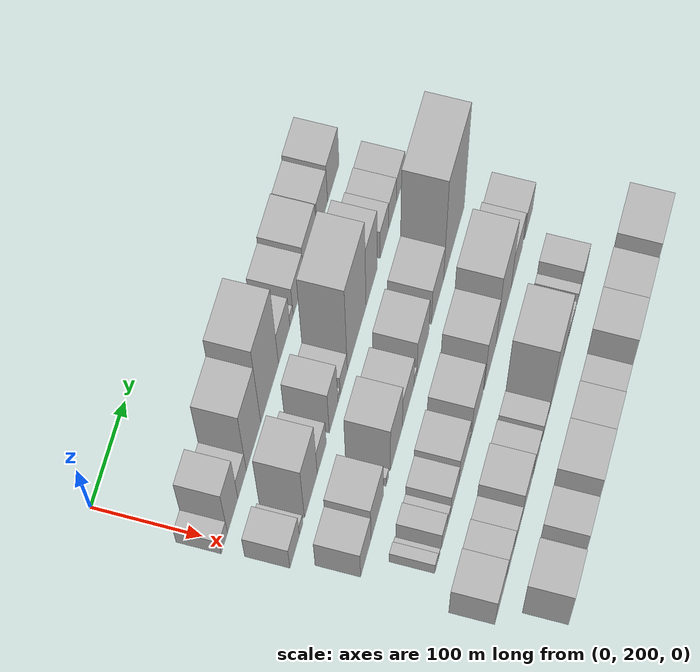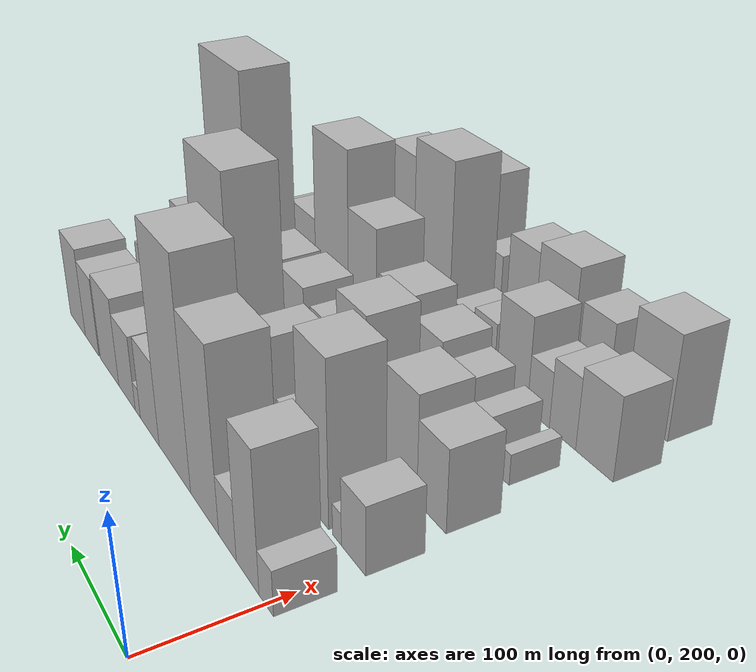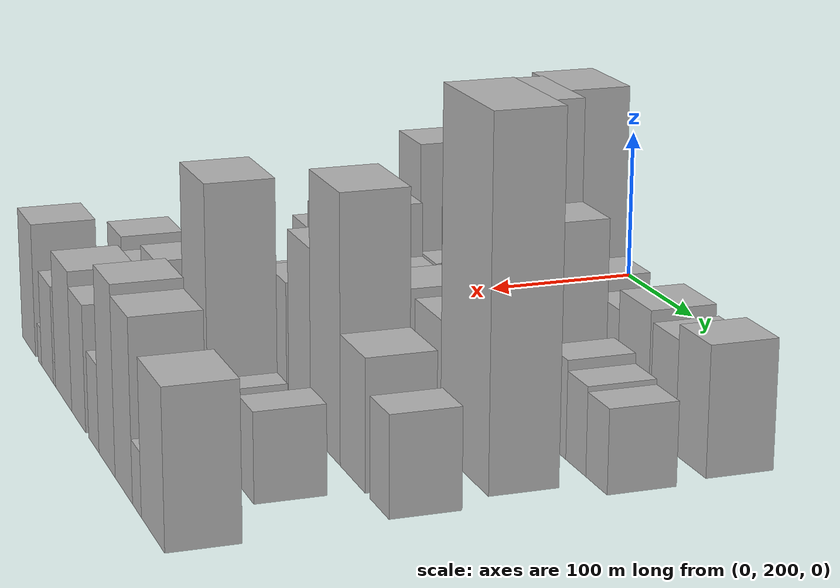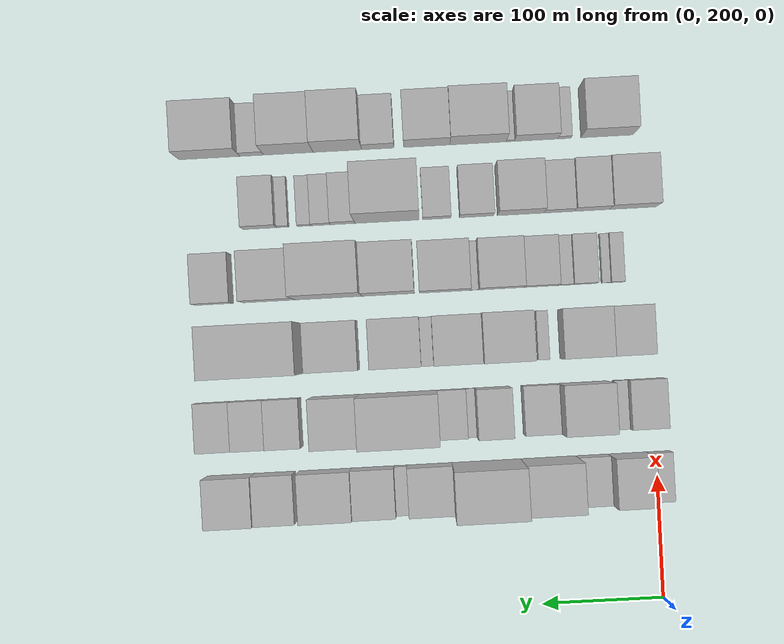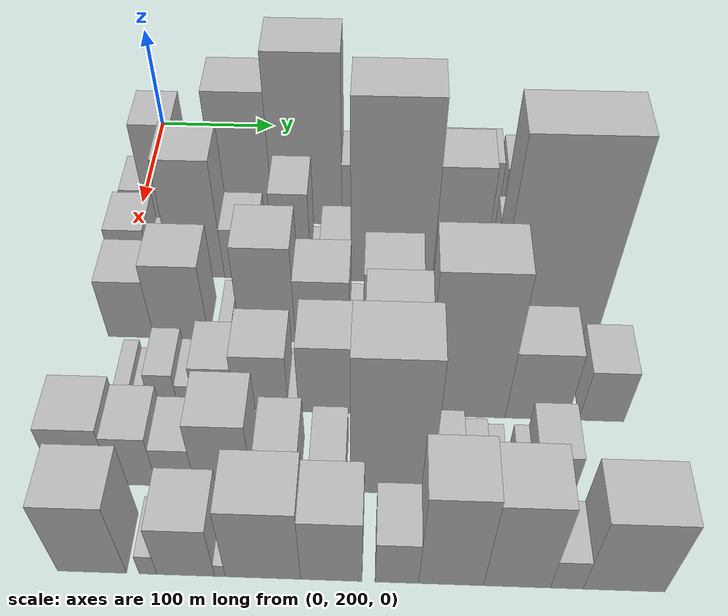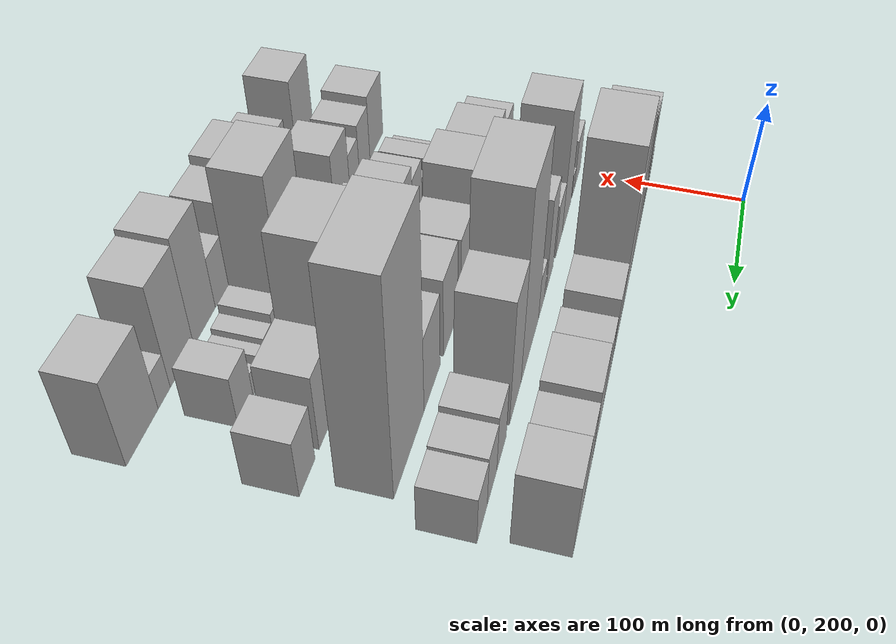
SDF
<sdf version="1.6">
 <world name="default">
  <model name="building_31">
   <static>1</static>
   <pose>100.0000 198.6145 0 0.000000 0.000000 0.000000</pose>
   <link name="link">
    <pose>0 0 16.50 0 0 0</pose>
    <collision name="collision"><geometry><box><size>40.0000 19.1421 33.0000</size></box></geometry></collision>
    <visual name="visual">
     <cast_shadows>0</cast_shadows>
     <geometry><box><size>40.0000 19.1421 33.0000</size></box></geometry>
     <material>
      <script>
       <uri>model://HANNAS_wall/materials/scripts</uri>
       <uri>model://HANNAS_wall/materials/textures</uri>
       <name>vrc/HANNAS_wall</name>
      </script>
     </material>
    </visual>
   </link>
  </model>
  <model name="building_32">
   <static>1</static>
   <pose>100.0000 224.0683 0 0.000000 0.000000 0.000000</pose>
   <link name="link">
    <pose>0 0 51.00 0 0 0</pose>
    <collision name="collision"><geometry><box><size>40.0000 31.7655 102.0000</size></box></geometry></collision>
    <visual name="visual">
     <cast_shadows>0</cast_shadows>
     <geometry><box><size>40.0000 31.7655 102.0000</size></box></geometry>
     <material>
      <script>
       <uri>model://HANNAS_wall/materials/scripts</uri>
       <uri>model://HANNAS_wall/materials/textures</uri>
       <name>vrc/HANNAS_wall</name>
      </script>
     </material>
    </visual>
   </link>
  </model>
  <model name="building_33">
   <static>1</static>
   <pose>100.0000 253.0568 0 0.000000 0.000000 0.000000</pose>
   <link name="link">
    <pose>0 0 22.50 0 0 0</pose>
    <collision name="collision"><geometry><box><size>40.0000 26.2116 45.0000</size></box></geometry></collision>
    <visual name="visual">
     <cast_shadows>0</cast_shadows>
     <geometry><box><size>40.0000 26.2116 45.0000</size></box></geometry>
     <material>
      <script>
       <uri>model://HANNAS_wall/materials/scripts</uri>
       <uri>model://HANNAS_wall/materials/textures</uri>
       <name>vrc/HANNAS_wall</name>
      </script>
     </material>
    </visual>
   </link>
  </model>
  <model name="building_34">
   <static>1</static>
   <pose>100.0000 288.7687 0 0.000000 0.000000 0.000000</pose>
   <link name="link">
    <pose>0 0 67.50 0 0 0</pose>
    <collision name="collision"><geometry><box><size>40.0000 45.2121 135.0000</size></box></geometry></collision>
    <visual name="visual">
     <cast_shadows>0</cast_shadows>
     <geometry><box><size>40.0000 45.2121 135.0000</size></box></geometry>
     <material>
      <script>
       <uri>model://HANNAS_wall/materials/scripts</uri>
       <uri>model://HANNAS_wall/materials/textures</uri>
       <name>vrc/HANNAS_wall</name>
      </script>
     </material>
    </visual>
   </link>
  </model>
  <model name="building_35">
   <static>1</static>
   <pose>100.0000 339.5329 0 0.000000 0.000000 0.000000</pose>
   <link name="link">
    <pose>0 0 85.50 0 0 0</pose>
    <collision name="collision"><geometry><box><size>40.0000 56.3162 171.0000</size></box></geometry></collision>
    <visual name="visual">
     <cast_shadows>0</cast_shadows>
     <geometry><box><size>40.0000 56.3162 171.0000</size></box></geometry>
     <material>
      <script>
       <uri>model://HANNAS_wall/materials/scripts</uri>
       <uri>model://HANNAS_wall/materials/textures</uri>
       <name>vrc/HANNAS_wall</name>
      </script>
     </material>
    </visual>
   </link>
  </model>
  <model name="building_36">
   <static>1</static>
   <pose>100.0000 386.1106 0 0.000000 0.000000 0.000000</pose>
   <link name="link">
    <pose>0 0 33.00 0 0 0</pose>
    <collision name="collision"><geometry><box><size>40.0000 36.8392 66.0000</size></box></geometry></collision>
    <visual name="visual">
     <cast_shadows>0</cast_shadows>
     <geometry><box><size>40.0000 36.8392 66.0000</size></box></geometry>
     <material>
      <script>
       <uri>model://HANNAS_wall/materials/scripts</uri>
       <uri>model://HANNAS_wall/materials/textures</uri>
       <name>vrc/HANNAS_wall</name>
      </script>
     </material>
    </visual>
   </link>
  </model>
  <model name="building_37">
   <static>1</static>
   <pose>100.0000 409.8533 0 0.000000 0.000000 0.000000</pose>
   <link name="link">
    <pose>0 0 12.00 0 0 0</pose>
    <collision name="collision"><geometry><box><size>40.0000 10.6462 24.0000</size></box></geometry></collision>
    <visual name="visual">
     <cast_shadows>0</cast_shadows>
     <geometry><box><size>40.0000 10.6462 24.0000</size></box></geometry>
     <material>
      <script>
       <uri>model://HANNAS_wall/materials/scripts</uri>
       <uri>model://HANNAS_wall/materials/textures</uri>
       <name>vrc/HANNAS_wall</name>
      </script>
     </material>
    </visual>
   </link>
  </model>
  <model name="building_38">
   <static>1</static>
   <pose>100.0000 432.6948 0 0.000000 0.000000 0.000000</pose>
   <link name="link">
    <pose>0 0 30.00 0 0 0</pose>
    <collision name="collision"><geometry><box><size>40.0000 35.0368 60.0000</size></box></geometry></collision>
    <visual name="visual">
     <cast_shadows>0</cast_shadows>
     <geometry><box><size>40.0000 35.0368 60.0000</size></box></geometry>
     <material>
      <script>
       <uri>model://HANNAS_wall/materials/scripts</uri>
       <uri>model://HANNAS_wall/materials/textures</uri>
       <name>vrc/HANNAS_wall</name>
      </script>
     </material>
    </visual>
   </link>
  </model>
  <model name="building_39">
   <static>1</static>
   <pose>100.0000 471.5594 0 0.000000 0.000000 0.000000</pose>
   <link name="link">
    <pose>0 0 36.00 0 0 0</pose>
    <collision name="collision"><geometry><box><size>40.0000 42.6924 72.0000</size></box></geometry></collision>
    <visual name="visual">
     <cast_shadows>0</cast_shadows>
     <geometry><box><size>40.0000 42.6924 72.0000</size></box></geometry>
     <material>
      <script>
       <uri>model://HANNAS_wall/materials/scripts</uri>
       <uri>model://HANNAS_wall/materials/textures</uri>
       <name>vrc/HANNAS_wall</name>
      </script>
     </material>
    </visual>
   </link>
  </model>
  <model name="building_40">
   <static>1</static>
   <pose>100.0000 512.6426 0 0.000000 0.000000 0.000000</pose>
   <link name="link">
    <pose>0 0 33.00 0 0 0</pose>
    <collision name="collision"><geometry><box><size>40.0000 33.4740 66.0000</size></box></geometry></collision>
    <visual name="visual">
     <cast_shadows>0</cast_shadows>
     <geometry><box><size>40.0000 33.4740 66.0000</size></box></geometry>
     <material>
      <script>
       <uri>model://HANNAS_wall/materials/scripts</uri>
       <uri>model://HANNAS_wall/materials/textures</uri>
       <name>vrc/HANNAS_wall</name>
      </script>
     </material>
    </visual>
   </link>
  </model>
  <model name="building_41">
   <static>1</static>
   <pose>100.0000 548.7617 0 0.000000 0.000000 0.000000</pose>
   <link name="link">
    <pose>0 0 37.50 0 0 0</pose>
    <collision name="collision"><geometry><box><size>40.0000 38.7641 75.0000</size></box></geometry></collision>
    <visual name="visual">
     <cast_shadows>0</cast_shadows>
     <geometry><box><size>40.0000 38.7641 75.0000</size></box></geometry>
     <material>
      <script>
       <uri>model://HANNAS_wall/materials/scripts</uri>
       <uri>model://HANNAS_wall/materials/textures</uri>
       <name>vrc/HANNAS_wall</name>
      </script>
     </material>
    </visual>
   </link>
  </model>
  <model name="building_89">
   <static>1</static>
   <pose>160.0000 206.8802 0 0.000000 0.000000 0.000000</pose>
   <link name="link">
    <pose>0 0 25.50 0 0 0</pose>
    <collision name="collision"><geometry><box><size>40.0000 29.8237 51.0000</size></box></geometry></collision>
    <visual name="visual">
     <cast_shadows>0</cast_shadows>
     <geometry><box><size>40.0000 29.8237 51.0000</size></box></geometry>
     <material>
      <script>
       <uri>model://HANNAS_wall/materials/scripts</uri>
       <uri>model://HANNAS_wall/materials/textures</uri>
       <name>vrc/HANNAS_wall</name>
      </script>
     </material>
    </visual>
   </link>
  </model>
  <model name="building_90">
   <static>1</static>
   <pose>160.0000 227.4002 0 0.000000 0.000000 0.000000</pose>
   <link name="link">
    <pose>0 0 12.00 0 0 0</pose>
    <collision name="collision"><geometry><box><size>40.0000 11.2162 24.0000</size></box></geometry></collision>
    <visual name="visual">
     <cast_shadows>0</cast_shadows>
     <geometry><box><size>40.0000 11.2162 24.0000</size></box></geometry>
     <material>
      <script>
       <uri>model://HANNAS_wall/materials/scripts</uri>
       <uri>model://HANNAS_wall/materials/textures</uri>
       <name>vrc/HANNAS_wall</name>
      </script>
     </material>
    </visual>
   </link>
  </model>
  <model name="building_91">
   <static>1</static>
   <pose>160.0000 258.3663 0 0.000000 0.000000 0.000000</pose>
   <link name="link">
    <pose>0 0 61.50 0 0 0</pose>
    <collision name="collision"><geometry><box><size>40.0000 40.7160 123.0000</size></box></geometry></collision>
    <visual name="visual">
     <cast_shadows>0</cast_shadows>
     <geometry><box><size>40.0000 40.7160 123.0000</size></box></geometry>
     <material>
      <script>
       <uri>model://HANNAS_wall/materials/scripts</uri>
       <uri>model://HANNAS_wall/materials/textures</uri>
       <name>vrc/HANNAS_wall</name>
      </script>
     </material>
    </visual>
   </link>
  </model>
  <model name="building_92">
   <static>1</static>
   <pose>160.0000 293.2890 0 0.000000 0.000000 0.000000</pose>
   <link name="link">
    <pose>0 0 27.00 0 0 0</pose>
    <collision name="collision"><geometry><box><size>40.0000 29.1294 54.0000</size></box></geometry></collision>
    <visual name="visual">
     <cast_shadows>0</cast_shadows>
     <geometry><box><size>40.0000 29.1294 54.0000</size></box></geometry>
     <material>
      <script>
       <uri>model://HANNAS_wall/materials/scripts</uri>
       <uri>model://HANNAS_wall/materials/textures</uri>
       <name>vrc/HANNAS_wall</name>
      </script>
     </material>
    </visual>
   </link>
  </model>
  <model name="building_93">
   <static>1</static>
   <pose>160.0000 332.0252 0 0.000000 0.000000 0.000000</pose>
   <link name="link">
    <pose>0 0 46.50 0 0 0</pose>
    <collision name="collision"><geometry><box><size>40.0000 28.3429 93.0000</size></box></geometry></collision>
    <visual name="visual">
     <cast_shadows>0</cast_shadows>
     <geometry><box><size>40.0000 28.3429 93.0000</size></box></geometry>
     <material>
      <script>
       <uri>model://HANNAS_wall/materials/scripts</uri>
       <uri>model://HANNAS_wall/materials/textures</uri>
       <name>vrc/HANNAS_wall</name>
      </script>
     </material>
    </visual>
   </link>
  </model>
  <model name="building_94">
   <static>1</static>
   <pose>160.0000 349.9171 0 0.000000 0.000000 0.000000</pose>
   <link name="link">
    <pose>0 0 9.00 0 0 0</pose>
    <collision name="collision"><geometry><box><size>40.0000 7.4411 18.0000</size></box></geometry></collision>
    <visual name="visual">
     <cast_shadows>0</cast_shadows>
     <geometry><box><size>40.0000 7.4411 18.0000</size></box></geometry>
     <material>
      <script>
       <uri>model://HANNAS_wall/materials/scripts</uri>
       <uri>model://HANNAS_wall/materials/textures</uri>
       <name>vrc/HANNAS_wall</name>
      </script>
     </material>
    </visual>
   </link>
  </model>
  <model name="building_95">
   <static>1</static>
   <pose>160.0000 365.3472 0 0.000000 0.000000 0.000000</pose>
   <link name="link">
    <pose>0 0 21.00 0 0 0</pose>
    <collision name="collision"><geometry><box><size>40.0000 23.4192 42.0000</size></box></geometry></collision>
    <visual name="visual">
     <cast_shadows>0</cast_shadows>
     <geometry><box><size>40.0000 23.4192 42.0000</size></box></geometry>
     <material>
      <script>
       <uri>model://HANNAS_wall/materials/scripts</uri>
       <uri>model://HANNAS_wall/materials/textures</uri>
       <name>vrc/HANNAS_wall</name>
      </script>
     </material>
    </visual>
   </link>
  </model>
  <model name="building_96">
   <static>1</static>
   <pose>160.0000 408.4842 0 0.000000 0.000000 0.000000</pose>
   <link name="link">
    <pose>0 0 91.50 0 0 0</pose>
    <collision name="collision"><geometry><box><size>40.0000 62.8548 183.0000</size></box></geometry></collision>
    <visual name="visual">
     <cast_shadows>0</cast_shadows>
     <geometry><box><size>40.0000 62.8548 183.0000</size></box></geometry>
     <material>
      <script>
       <uri>model://HANNAS_wall/materials/scripts</uri>
       <uri>model://HANNAS_wall/materials/textures</uri>
       <name>vrc/HANNAS_wall</name>
      </script>
     </material>
    </visual>
   </link>
  </model>
  <model name="building_97">
   <static>1</static>
   <pose>160.0000 459.2124 0 0.000000 0.000000 0.000000</pose>
   <link name="link">
    <pose>0 0 61.50 0 0 0</pose>
    <collision name="collision"><geometry><box><size>40.0000 38.6016 123.0000</size></box></geometry></collision>
    <visual name="visual">
     <cast_shadows>0</cast_shadows>
     <geometry><box><size>40.0000 38.6016 123.0000</size></box></geometry>
     <material>
      <script>
       <uri>model://HANNAS_wall/materials/scripts</uri>
       <uri>model://HANNAS_wall/materials/textures</uri>
       <name>vrc/HANNAS_wall</name>
      </script>
     </material>
    </visual>
   </link>
  </model>
  <model name="building_98">
   <static>1</static>
   <pose>160.0000 503.0055 0 0.000000 0.000000 0.000000</pose>
   <link name="link">
    <pose>0 0 28.50 0 0 0</pose>
    <collision name="collision"><geometry><box><size>40.0000 28.9847 57.0000</size></box></geometry></collision>
    <visual name="visual">
     <cast_shadows>0</cast_shadows>
     <geometry><box><size>40.0000 28.9847 57.0000</size></box></geometry>
     <material>
      <script>
       <uri>model://HANNAS_wall/materials/scripts</uri>
       <uri>model://HANNAS_wall/materials/textures</uri>
       <name>vrc/HANNAS_wall</name>
      </script>
     </material>
    </visual>
   </link>
  </model>
  <model name="building_99">
   <static>1</static>
   <pose>160.0000 531.3823 0 0.000000 0.000000 0.000000</pose>
   <link name="link">
    <pose>0 0 25.50 0 0 0</pose>
    <collision name="collision"><geometry><box><size>40.0000 27.7690 51.0000</size></box></geometry></collision>
    <visual name="visual">
     <cast_shadows>0</cast_shadows>
     <geometry><box><size>40.0000 27.7690 51.0000</size></box></geometry>
     <material>
      <script>
       <uri>model://HANNAS_wall/materials/scripts</uri>
       <uri>model://HANNAS_wall/materials/textures</uri>
       <name>vrc/HANNAS_wall</name>
      </script>
     </material>
    </visual>
   </link>
  </model>
  <model name="building_100">
   <static>1</static>
   <pose>160.0000 559.5418 0 0.000000 0.000000 0.000000</pose>
   <link name="link">
    <pose>0 0 24.00 0 0 0</pose>
    <collision name="collision"><geometry><box><size>40.0000 28.5498 48.0000</size></box></geometry></collision>
    <visual name="visual">
     <cast_shadows>0</cast_shadows>
     <geometry><box><size>40.0000 28.5498 48.0000</size></box></geometry>
     <material>
      <script>
       <uri>model://HANNAS_wall/materials/scripts</uri>
       <uri>model://HANNAS_wall/materials/textures</uri>
       <name>vrc/HANNAS_wall</name>
      </script>
     </material>
    </visual>
   </link>
  </model>
  <model name="building_143">
   <static>1</static>
   <pose>220.0000 216.8542 0 0.000000 0.000000 0.000000</pose>
   <link name="link">
    <pose>0 0 31.50 0 0 0</pose>
    <collision name="collision"><geometry><box><size>40.0000 33.9418 63.0000</size></box></geometry></collision>
    <visual name="visual">
     <cast_shadows>0</cast_shadows>
     <geometry><box><size>40.0000 33.9418 63.0000</size></box></geometry>
     <material>
      <script>
       <uri>model://HANNAS_wall/materials/scripts</uri>
       <uri>model://HANNAS_wall/materials/textures</uri>
       <name>vrc/HANNAS_wall</name>
      </script>
     </material>
    </visual>
   </link>
  </model>
  <model name="building_144">
   <static>1</static>
   <pose>220.0000 254.2177 0 0.000000 0.000000 0.000000</pose>
   <link name="link">
    <pose>0 0 40.50 0 0 0</pose>
    <collision name="collision"><geometry><box><size>40.0000 40.7852 81.0000</size></box></geometry></collision>
    <visual name="visual">
     <cast_shadows>0</cast_shadows>
     <geometry><box><size>40.0000 40.7852 81.0000</size></box></geometry>
     <material>
      <script>
       <uri>model://HANNAS_wall/materials/scripts</uri>
       <uri>model://HANNAS_wall/materials/textures</uri>
       <name>vrc/HANNAS_wall</name>
      </script>
     </material>
    </visual>
   </link>
  </model>
  <model name="building_145">
   <static>1</static>
   <pose>220.0000 288.3154 0 0.000000 0.000000 0.000000</pose>
   <link name="link">
    <pose>0 0 10.50 0 0 0</pose>
    <collision name="collision"><geometry><box><size>40.0000 9.4103 21.0000</size></box></geometry></collision>
    <visual name="visual">
     <cast_shadows>0</cast_shadows>
     <geometry><box><size>40.0000 9.4103 21.0000</size></box></geometry>
     <material>
      <script>
       <uri>model://HANNAS_wall/materials/scripts</uri>
       <uri>model://HANNAS_wall/materials/textures</uri>
       <name>vrc/HANNAS_wall</name>
      </script>
     </material>
    </visual>
   </link>
  </model>
  <model name="building_146">
   <static>1</static>
   <pose>220.0000 318.3101 0 0.000000 0.000000 0.000000</pose>
   <link name="link">
    <pose>0 0 51.00 0 0 0</pose>
    <collision name="collision"><geometry><box><size>40.0000 40.5791 102.0000</size></box></geometry></collision>
    <visual name="visual">
     <cast_shadows>0</cast_shadows>
     <geometry><box><size>40.0000 40.5791 102.0000</size></box></geometry>
     <material>
      <script>
       <uri>model://HANNAS_wall/materials/scripts</uri>
       <uri>model://HANNAS_wall/materials/textures</uri>
       <name>vrc/HANNAS_wall</name>
      </script>
     </material>
    </visual>
   </link>
  </model>
  <model name="building_147">
   <static>1</static>
   <pose>220.0000 358.4478 0 0.000000 0.000000 0.000000</pose>
   <link name="link">
    <pose>0 0 34.50 0 0 0</pose>
    <collision name="collision"><geometry><box><size>40.0000 39.6963 69.0000</size></box></geometry></collision>
    <visual name="visual">
     <cast_shadows>0</cast_shadows>
     <geometry><box><size>40.0000 39.6963 69.0000</size></box></geometry>
     <material>
      <script>
       <uri>model://HANNAS_wall/materials/scripts</uri>
       <uri>model://HANNAS_wall/materials/textures</uri>
       <name>vrc/HANNAS_wall</name>
      </script>
     </material>
    </visual>
   </link>
  </model>
  <model name="building_148">
   <static>1</static>
   <pose>220.0000 383.3438 0 0.000000 0.000000 0.000000</pose>
   <link name="link">
    <pose>0 0 10.50 0 0 0</pose>
    <collision name="collision"><geometry><box><size>40.0000 10.0958 21.0000</size></box></geometry></collision>
    <visual name="visual">
     <cast_shadows>0</cast_shadows>
     <geometry><box><size>40.0000 10.0958 21.0000</size></box></geometry>
     <material>
      <script>
       <uri>model://HANNAS_wall/materials/scripts</uri>
       <uri>model://HANNAS_wall/materials/textures</uri>
       <name>vrc/HANNAS_wall</name>
      </script>
     </material>
    </visual>
   </link>
  </model>
  <model name="building_149">
   <static>1</static>
   <pose>220.0000 409.1304 0 0.000000 0.000000 0.000000</pose>
   <link name="link">
    <pose>0 0 39.00 0 0 0</pose>
    <collision name="collision"><geometry><box><size>40.0000 41.4775 78.0000</size></box></geometry></collision>
    <visual name="visual">
     <cast_shadows>0</cast_shadows>
     <geometry><box><size>40.0000 41.4775 78.0000</size></box></geometry>
     <material>
      <script>
       <uri>model://HANNAS_wall/materials/scripts</uri>
       <uri>model://HANNAS_wall/materials/textures</uri>
       <name>vrc/HANNAS_wall</name>
      </script>
     </material>
    </visual>
   </link>
  </model>
  <model name="building_150">
   <static>1</static>
   <pose>220.0000 460.5148 0 0.000000 0.000000 0.000000</pose>
   <link name="link">
    <pose>0 0 37.50 0 0 0</pose>
    <collision name="collision"><geometry><box><size>40.0000 43.2913 75.0000</size></box></geometry></collision>
    <visual name="visual">
     <cast_shadows>0</cast_shadows>
     <geometry><box><size>40.0000 43.2913 75.0000</size></box></geometry>
     <material>
      <script>
       <uri>model://HANNAS_wall/materials/scripts</uri>
       <uri>model://HANNAS_wall/materials/textures</uri>
       <name>vrc/HANNAS_wall</name>
      </script>
     </material>
    </visual>
   </link>
  </model>
  <model name="building_151">
   <static>1</static>
   <pose>220.0000 519.0782 0 0.000000 0.000000 0.000000</pose>
   <link name="link">
    <pose>0 0 103.50 0 0 0</pose>
    <collision name="collision"><geometry><box><size>40.0000 73.8353 207.0000</size></box></geometry></collision>
    <visual name="visual">
     <cast_shadows>0</cast_shadows>
     <geometry><box><size>40.0000 73.8353 207.0000</size></box></geometry>
     <material>
      <script>
       <uri>model://HANNAS_wall/materials/scripts</uri>
       <uri>model://HANNAS_wall/materials/textures</uri>
       <name>vrc/HANNAS_wall</name>
      </script>
     </material>
    </visual>
   </link>
  </model>
  <model name="building_197">
   <static>1</static>
   <pose>280.0000 224.7638 0 0.000000 0.000000 0.000000</pose>
   <link name="link">
    <pose>0 0 12.00 0 0 0</pose>
    <collision name="collision"><geometry><box><size>40.0000 11.0630 24.0000</size></box></geometry></collision>
    <visual name="visual">
     <cast_shadows>0</cast_shadows>
     <geometry><box><size>40.0000 11.0630 24.0000</size></box></geometry>
     <material>
      <script>
       <uri>model://HANNAS_wall/materials/scripts</uri>
       <uri>model://HANNAS_wall/materials/textures</uri>
       <name>vrc/HANNAS_wall</name>
      </script>
     </material>
    </visual>
   </link>
  </model>
  <model name="building_198">
   <static>1</static>
   <pose>280.0000 233.8836 0 0.000000 0.000000 0.000000</pose>
   <link name="link">
    <pose>0 0 7.50 0 0 0</pose>
    <collision name="collision"><geometry><box><size>40.0000 7.1765 15.0000</size></box></geometry></collision>
    <visual name="visual">
     <cast_shadows>0</cast_shadows>
     <geometry><box><size>40.0000 7.1765 15.0000</size></box></geometry>
     <material>
      <script>
       <uri>model://HANNAS_wall/materials/scripts</uri>
       <uri>model://HANNAS_wall/materials/textures</uri>
       <name>vrc/HANNAS_wall</name>
      </script>
     </material>
    </visual>
   </link>
  </model>
  <model name="building_199">
   <static>1</static>
   <pose>280.0000 251.3506 0 0.000000 0.000000 0.000000</pose>
   <link name="link">
    <pose>0 0 19.50 0 0 0</pose>
    <collision name="collision"><geometry><box><size>40.0000 19.7576 39.0000</size></box></geometry></collision>
    <visual name="visual">
     <cast_shadows>0</cast_shadows>
     <geometry><box><size>40.0000 19.7576 39.0000</size></box></geometry>
     <material>
      <script>
       <uri>model://HANNAS_wall/materials/scripts</uri>
       <uri>model://HANNAS_wall/materials/textures</uri>
       <name>vrc/HANNAS_wall</name>
      </script>
     </material>
    </visual>
   </link>
  </model>
  <model name="building_200">
   <static>1</static>
   <pose>280.0000 266.9859 0 0.000000 0.000000 0.000000</pose>
   <link name="link">
    <pose>0 0 13.50 0 0 0</pose>
    <collision name="collision"><geometry><box><size>40.0000 11.5130 27.0000</size></box></geometry></collision>
    <visual name="visual">
     <cast_shadows>0</cast_shadows>
     <geometry><box><size>40.0000 11.5130 27.0000</size></box></geometry>
     <material>
      <script>
       <uri>model://HANNAS_wall/materials/scripts</uri>
       <uri>model://HANNAS_wall/materials/textures</uri>
       <name>vrc/HANNAS_wall</name>
      </script>
     </material>
    </visual>
   </link>
  </model>
  <model name="building_201">
   <static>1</static>
   <pose>280.0000 286.9195 0 0.000000 0.000000 0.000000</pose>
   <link name="link">
    <pose>0 0 24.00 0 0 0</pose>
    <collision name="collision"><geometry><box><size>40.0000 28.3541 48.0000</size></box></geometry></collision>
    <visual name="visual">
     <cast_shadows>0</cast_shadows>
     <geometry><box><size>40.0000 28.3541 48.0000</size></box></geometry>
     <material>
      <script>
       <uri>model://HANNAS_wall/materials/scripts</uri>
       <uri>model://HANNAS_wall/materials/textures</uri>
       <name>vrc/HANNAS_wall</name>
      </script>
     </material>
    </visual>
   </link>
  </model>
  <model name="building_202">
   <static>1</static>
   <pose>280.0000 319.7025 0 0.000000 0.000000 0.000000</pose>
   <link name="link">
    <pose>0 0 31.50 0 0 0</pose>
    <collision name="collision"><geometry><box><size>40.0000 37.2117 63.0000</size></box></geometry></collision>
    <visual name="visual">
     <cast_shadows>0</cast_shadows>
     <geometry><box><size>40.0000 37.2117 63.0000</size></box></geometry>
     <material>
      <script>
       <uri>model://HANNAS_wall/materials/scripts</uri>
       <uri>model://HANNAS_wall/materials/textures</uri>
       <name>vrc/HANNAS_wall</name>
      </script>
     </material>
    </visual>
   </link>
  </model>
  <model name="building_203">
   <static>1</static>
   <pose>280.0000 341.7970 0 0.000000 0.000000 0.000000</pose>
   <link name="link">
    <pose>0 0 7.50 0 0 0</pose>
    <collision name="collision"><geometry><box><size>40.0000 6.9774 15.0000</size></box></geometry></collision>
    <visual name="visual">
     <cast_shadows>0</cast_shadows>
     <geometry><box><size>40.0000 6.9774 15.0000</size></box></geometry>
     <material>
      <script>
       <uri>model://HANNAS_wall/materials/scripts</uri>
       <uri>model://HANNAS_wall/materials/textures</uri>
       <name>vrc/HANNAS_wall</name>
      </script>
     </material>
    </visual>
   </link>
  </model>
  <model name="building_204">
   <static>1</static>
   <pose>280.0000 365.9866 0 0.000000 0.000000 0.000000</pose>
   <link name="link">
    <pose>0 0 37.50 0 0 0</pose>
    <collision name="collision"><geometry><box><size>40.0000 41.4018 75.0000</size></box></geometry></collision>
    <visual name="visual">
     <cast_shadows>0</cast_shadows>
     <geometry><box><size>40.0000 41.4018 75.0000</size></box></geometry>
     <material>
      <script>
       <uri>model://HANNAS_wall/materials/scripts</uri>
       <uri>model://HANNAS_wall/materials/textures</uri>
       <name>vrc/HANNAS_wall</name>
      </script>
     </material>
    </visual>
   </link>
  </model>
  <model name="building_205">
   <static>1</static>
   <pose>280.0000 412.0388 0 0.000000 0.000000 0.000000</pose>
   <link name="link">
    <pose>0 0 54.00 0 0 0</pose>
    <collision name="collision"><geometry><box><size>40.0000 42.7027 108.0000</size></box></geometry></collision>
    <visual name="visual">
     <cast_shadows>0</cast_shadows>
     <geometry><box><size>40.0000 42.7027 108.0000</size></box></geometry>
     <material>
      <script>
       <uri>model://HANNAS_wall/materials/scripts</uri>
       <uri>model://HANNAS_wall/materials/textures</uri>
       <name>vrc/HANNAS_wall</name>
      </script>
     </material>
    </visual>
   </link>
  </model>
  <model name="building_206">
   <static>1</static>
   <pose>280.0000 460.7645 0 0.000000 0.000000 0.000000</pose>
   <link name="link">
    <pose>0 0 76.50 0 0 0</pose>
    <collision name="collision"><geometry><box><size>40.0000 54.7486 153.0000</size></box></geometry></collision>
    <visual name="visual">
     <cast_shadows>0</cast_shadows>
     <geometry><box><size>40.0000 54.7486 153.0000</size></box></geometry>
     <material>
      <script>
       <uri>model://HANNAS_wall/materials/scripts</uri>
       <uri>model://HANNAS_wall/materials/textures</uri>
       <name>vrc/HANNAS_wall</name>
      </script>
     </material>
    </visual>
   </link>
  </model>
  <model name="building_207">
   <static>1</static>
   <pose>280.0000 509.6685 0 0.000000 0.000000 0.000000</pose>
   <link name="link">
    <pose>0 0 37.50 0 0 0</pose>
    <collision name="collision"><geometry><box><size>40.0000 43.0593 75.0000</size></box></geometry></collision>
    <visual name="visual">
     <cast_shadows>0</cast_shadows>
     <geometry><box><size>40.0000 43.0593 75.0000</size></box></geometry>
     <material>
      <script>
       <uri>model://HANNAS_wall/materials/scripts</uri>
       <uri>model://HANNAS_wall/materials/textures</uri>
       <name>vrc/HANNAS_wall</name>
      </script>
     </material>
    </visual>
   </link>
  </model>
  <model name="building_208">
   <static>1</static>
   <pose>280.0000 554.6207 0 0.000000 0.000000 0.000000</pose>
   <link name="link">
    <pose>0 0 28.50 0 0 0</pose>
    <collision name="collision"><geometry><box><size>40.0000 30.8451 57.0000</size></box></geometry></collision>
    <visual name="visual">
     <cast_shadows>0</cast_shadows>
     <geometry><box><size>40.0000 30.8451 57.0000</size></box></geometry>
     <material>
      <script>
       <uri>model://HANNAS_wall/materials/scripts</uri>
       <uri>model://HANNAS_wall/materials/textures</uri>
       <name>vrc/HANNAS_wall</name>
      </script>
     </material>
    </visual>
   </link>
  </model>
  <model name="building_255">
   <static>1</static>
   <pose>340.0000 208.4347 0 0.000000 0.000000 0.000000</pose>
   <link name="link">
    <pose>0 0 33.00 0 0 0</pose>
    <collision name="collision"><geometry><box><size>40.0000 38.4819 66.0000</size></box></geometry></collision>
    <visual name="visual">
     <cast_shadows>0</cast_shadows>
     <geometry><box><size>40.0000 38.4819 66.0000</size></box></geometry>
     <material>
      <script>
       <uri>model://HANNAS_wall/materials/scripts</uri>
       <uri>model://HANNAS_wall/materials/textures</uri>
       <name>vrc/HANNAS_wall</name>
      </script>
     </material>
    </visual>
   </link>
  </model>
  <model name="building_256">
   <static>1</static>
   <pose>340.0000 242.0557 0 0.000000 0.000000 0.000000</pose>
   <link name="link">
    <pose>0 0 28.50 0 0 0</pose>
    <collision name="collision"><geometry><box><size>40.0000 28.7600 57.0000</size></box></geometry></collision>
    <visual name="visual">
     <cast_shadows>0</cast_shadows>
     <geometry><box><size>40.0000 28.7600 57.0000</size></box></geometry>
     <material>
      <script>
       <uri>model://HANNAS_wall/materials/scripts</uri>
       <uri>model://HANNAS_wall/materials/textures</uri>
       <name>vrc/HANNAS_wall</name>
      </script>
     </material>
    </visual>
   </link>
  </model>
  <model name="building_257">
   <static>1</static>
   <pose>340.0000 269.0183 0 0.000000 0.000000 0.000000</pose>
   <link name="link">
    <pose>0 0 22.50 0 0 0</pose>
    <collision name="collision"><geometry><box><size>40.0000 25.1653 45.0000</size></box></geometry></collision>
    <visual name="visual">
     <cast_shadows>0</cast_shadows>
     <geometry><box><size>40.0000 25.1653 45.0000</size></box></geometry>
     <material>
      <script>
       <uri>model://HANNAS_wall/materials/scripts</uri>
       <uri>model://HANNAS_wall/materials/textures</uri>
       <name>vrc/HANNAS_wall</name>
      </script>
     </material>
    </visual>
   </link>
  </model>
  <model name="building_258">
   <static>1</static>
   <pose>340.0000 300.5375 0 0.000000 0.000000 0.000000</pose>
   <link name="link">
    <pose>0 0 37.50 0 0 0</pose>
    <collision name="collision"><geometry><box><size>40.0000 37.8731 75.0000</size></box></geometry></collision>
    <visual name="visual">
     <cast_shadows>0</cast_shadows>
     <geometry><box><size>40.0000 37.8731 75.0000</size></box></geometry>
     <material>
      <script>
       <uri>model://HANNAS_wall/materials/scripts</uri>
       <uri>model://HANNAS_wall/materials/textures</uri>
       <name>vrc/HANNAS_wall</name>
      </script>
     </material>
    </visual>
   </link>
  </model>
  <model name="building_259">
   <static>1</static>
   <pose>340.0000 336.5421 0 0.000000 0.000000 0.000000</pose>
   <link name="link">
    <pose>0 0 24.00 0 0 0</pose>
    <collision name="collision"><geometry><box><size>40.0000 28.1360 48.0000</size></box></geometry></collision>
    <visual name="visual">
     <cast_shadows>0</cast_shadows>
     <geometry><box><size>40.0000 28.1360 48.0000</size></box></geometry>
     <material>
      <script>
       <uri>model://HANNAS_wall/materials/scripts</uri>
       <uri>model://HANNAS_wall/materials/textures</uri>
       <name>vrc/HANNAS_wall</name>
      </script>
     </material>
    </visual>
   </link>
  </model>
  <model name="building_260">
   <static>1</static>
   <pose>340.0000 369.1292 0 0.000000 0.000000 0.000000</pose>
   <link name="link">
    <pose>0 0 19.50 0 0 0</pose>
    <collision name="collision"><geometry><box><size>40.0000 23.0383 39.0000</size></box></geometry></collision>
    <visual name="visual">
     <cast_shadows>0</cast_shadows>
     <geometry><box><size>40.0000 23.0383 39.0000</size></box></geometry>
     <material>
      <script>
       <uri>model://HANNAS_wall/materials/scripts</uri>
       <uri>model://HANNAS_wall/materials/textures</uri>
       <name>vrc/HANNAS_wall</name>
      </script>
     </material>
    </visual>
   </link>
  </model>
  <model name="building_261">
   <static>1</static>
   <pose>340.0000 409.8679 0 0.000000 0.000000 0.000000</pose>
   <link name="link">
    <pose>0 0 75.00 0 0 0</pose>
    <collision name="collision"><geometry><box><size>40.0000 52.4390 150.0000</size></box></geometry></collision>
    <visual name="visual">
     <cast_shadows>0</cast_shadows>
     <geometry><box><size>40.0000 52.4390 150.0000</size></box></geometry>
     <material>
      <script>
       <uri>model://HANNAS_wall/materials/scripts</uri>
       <uri>model://HANNAS_wall/materials/textures</uri>
       <name>vrc/HANNAS_wall</name>
      </script>
     </material>
    </visual>
   </link>
  </model>
  <model name="building_262">
   <static>1</static>
   <pose>340.0000 446.2205 0 0.000000 0.000000 0.000000</pose>
   <link name="link">
    <pose>0 0 19.50 0 0 0</pose>
    <collision name="collision"><geometry><box><size>40.0000 20.2662 39.0000</size></box></geometry></collision>
    <visual name="visual">
     <cast_shadows>0</cast_shadows>
     <geometry><box><size>40.0000 20.2662 39.0000</size></box></geometry>
     <material>
      <script>
       <uri>model://HANNAS_wall/materials/scripts</uri>
       <uri>model://HANNAS_wall/materials/textures</uri>
       <name>vrc/HANNAS_wall</name>
      </script>
     </material>
    </visual>
   </link>
  </model>
  <model name="building_263">
   <static>1</static>
   <pose>340.0000 464.2510 0 0.000000 0.000000 0.000000</pose>
   <link name="link">
    <pose>0 0 15.00 0 0 0</pose>
    <collision name="collision"><geometry><box><size>40.0000 15.7947 30.0000</size></box></geometry></collision>
    <visual name="visual">
     <cast_shadows>0</cast_shadows>
     <geometry><box><size>40.0000 15.7947 30.0000</size></box></geometry>
     <material>
      <script>
       <uri>model://HANNAS_wall/materials/scripts</uri>
       <uri>model://HANNAS_wall/materials/textures</uri>
       <name>vrc/HANNAS_wall</name>
      </script>
     </material>
    </visual>
   </link>
  </model>
  <model name="building_264">
   <static>1</static>
   <pose>340.0000 477.7624 0 0.000000 0.000000 0.000000</pose>
   <link name="link">
    <pose>0 0 12.00 0 0 0</pose>
    <collision name="collision"><geometry><box><size>40.0000 11.2281 24.0000</size></box></geometry></collision>
    <visual name="visual">
     <cast_shadows>0</cast_shadows>
     <geometry><box><size>40.0000 11.2281 24.0000</size></box></geometry>
     <material>
      <script>
       <uri>model://HANNAS_wall/materials/scripts</uri>
       <uri>model://HANNAS_wall/materials/textures</uri>
       <name>vrc/HANNAS_wall</name>
      </script>
     </material>
    </visual>
   </link>
  </model>
  <model name="building_265">
   <static>1</static>
   <pose>340.0000 495.3170 0 0.000000 0.000000 0.000000</pose>
   <link name="link">
    <pose>0 0 12.00 0 0 0</pose>
    <collision name="collision"><geometry><box><size>40.0000 9.8811 24.0000</size></box></geometry></collision>
    <visual name="visual">
     <cast_shadows>0</cast_shadows>
     <geometry><box><size>40.0000 9.8811 24.0000</size></box></geometry>
     <material>
      <script>
       <uri>model://HANNAS_wall/materials/scripts</uri>
       <uri>model://HANNAS_wall/materials/textures</uri>
       <name>vrc/HANNAS_wall</name>
      </script>
     </material>
    </visual>
   </link>
  </model>
  <model name="building_266">
   <static>1</static>
   <pose>340.0000 514.0488 0 0.000000 0.000000 0.000000</pose>
   <link name="link">
    <pose>0 0 25.50 0 0 0</pose>
    <collision name="collision"><geometry><box><size>40.0000 27.5825 51.0000</size></box></geometry></collision>
    <visual name="visual">
     <cast_shadows>0</cast_shadows>
     <geometry><box><size>40.0000 27.5825 51.0000</size></box></geometry>
     <material>
      <script>
       <uri>model://HANNAS_wall/materials/scripts</uri>
       <uri>model://HANNAS_wall/materials/textures</uri>
       <name>vrc/HANNAS_wall</name>
      </script>
     </material>
    </visual>
   </link>
  </model>
  <model name="building_309">
   <static>1</static>
   <pose>400.0000 226.3330 0 0.000000 0.000000 0.000000</pose>
   <link name="link">
    <pose>0 0 42.00 0 0 0</pose>
    <collision name="collision"><geometry><box><size>40.0000 42.6621 84.0000</size></box></geometry></collision>
    <visual name="visual">
     <cast_shadows>0</cast_shadows>
     <geometry><box><size>40.0000 42.6621 84.0000</size></box></geometry>
     <material>
      <script>
       <uri>model://HANNAS_wall/materials/scripts</uri>
       <uri>model://HANNAS_wall/materials/textures</uri>
       <name>vrc/HANNAS_wall</name>
      </script>
     </material>
    </visual>
   </link>
  </model>
  <model name="building_310">
   <static>1</static>
   <pose>400.0000 261.1063 0 0.000000 0.000000 0.000000</pose>
   <link name="link">
    <pose>0 0 12.00 0 0 0</pose>
    <collision name="collision"><geometry><box><size>40.0000 10.8845 24.0000</size></box></geometry></collision>
    <visual name="visual">
     <cast_shadows>0</cast_shadows>
     <geometry><box><size>40.0000 10.8845 24.0000</size></box></geometry>
     <material>
      <script>
       <uri>model://HANNAS_wall/materials/scripts</uri>
       <uri>model://HANNAS_wall/materials/textures</uri>
       <name>vrc/HANNAS_wall</name>
      </script>
     </material>
    </visual>
   </link>
  </model>
  <model name="building_311">
   <static>1</static>
   <pose>400.0000 284.4006 0 0.000000 0.000000 0.000000</pose>
   <link name="link">
    <pose>0 0 30.00 0 0 0</pose>
    <collision name="collision"><geometry><box><size>40.0000 35.7041 60.0000</size></box></geometry></collision>
    <visual name="visual">
     <cast_shadows>0</cast_shadows>
     <geometry><box><size>40.0000 35.7041 60.0000</size></box></geometry>
     <material>
      <script>
       <uri>model://HANNAS_wall/materials/scripts</uri>
       <uri>model://HANNAS_wall/materials/textures</uri>
       <name>vrc/HANNAS_wall</name>
      </script>
     </material>
    </visual>
   </link>
  </model>
  <model name="building_312">
   <static>1</static>
   <pose>400.0000 305.5377 0 0.000000 0.000000 0.000000</pose>
   <link name="link">
    <pose>0 0 7.50 0 0 0</pose>
    <collision name="collision"><geometry><box><size>40.0000 6.5700 15.0000</size></box></geometry></collision>
    <visual name="visual">
     <cast_shadows>0</cast_shadows>
     <geometry><box><size>40.0000 6.5700 15.0000</size></box></geometry>
     <material>
      <script>
       <uri>model://HANNAS_wall/materials/scripts</uri>
       <uri>model://HANNAS_wall/materials/textures</uri>
       <name>vrc/HANNAS_wall</name>
      </script>
     </material>
    </visual>
   </link>
  </model>
  <model name="building_313">
   <static>1</static>
   <pose>400.0000 331.9923 0 0.000000 0.000000 0.000000</pose>
   <link name="link">
    <pose>0 0 42.00 0 0 0</pose>
    <collision name="collision"><geometry><box><size>40.0000 46.3393 84.0000</size></box></geometry></collision>
    <visual name="visual">
     <cast_shadows>0</cast_shadows>
     <geometry><box><size>40.0000 46.3393 84.0000</size></box></geometry>
     <material>
      <script>
       <uri>model://HANNAS_wall/materials/scripts</uri>
       <uri>model://HANNAS_wall/materials/textures</uri>
       <name>vrc/HANNAS_wall</name>
      </script>
     </material>
    </visual>
   </link>
  </model>
  <model name="building_314">
   <static>1</static>
   <pose>400.0000 374.0036 0 0.000000 0.000000 0.000000</pose>
   <link name="link">
    <pose>0 0 37.50 0 0 0</pose>
    <collision name="collision"><geometry><box><size>40.0000 37.6833 75.0000</size></box></geometry></collision>
    <visual name="visual">
     <cast_shadows>0</cast_shadows>
     <geometry><box><size>40.0000 37.6833 75.0000</size></box></geometry>
     <material>
      <script>
       <uri>model://HANNAS_wall/materials/scripts</uri>
       <uri>model://HANNAS_wall/materials/textures</uri>
       <name>vrc/HANNAS_wall</name>
      </script>
     </material>
    </visual>
   </link>
  </model>
  <model name="building_315">
   <static>1</static>
   <pose>400.0000 414.1555 0 0.000000 0.000000 0.000000</pose>
   <link name="link">
    <pose>0 0 25.50 0 0 0</pose>
    <collision name="collision"><geometry><box><size>40.0000 26.6205 51.0000</size></box></geometry></collision>
    <visual name="visual">
     <cast_shadows>0</cast_shadows>
     <geometry><box><size>40.0000 26.6205 51.0000</size></box></geometry>
     <material>
      <script>
       <uri>model://HANNAS_wall/materials/scripts</uri>
       <uri>model://HANNAS_wall/materials/textures</uri>
       <name>vrc/HANNAS_wall</name>
      </script>
     </material>
    </visual>
   </link>
  </model>
  <model name="building_316">
   <static>1</static>
   <pose>400.0000 447.3115 0 0.000000 0.000000 0.000000</pose>
   <link name="link">
    <pose>0 0 54.00 0 0 0</pose>
    <collision name="collision"><geometry><box><size>40.0000 39.6914 108.0000</size></box></geometry></collision>
    <visual name="visual">
     <cast_shadows>0</cast_shadows>
     <geometry><box><size>40.0000 39.6914 108.0000</size></box></geometry>
     <material>
      <script>
       <uri>model://HANNAS_wall/materials/scripts</uri>
       <uri>model://HANNAS_wall/materials/textures</uri>
       <name>vrc/HANNAS_wall</name>
      </script>
     </material>
    </visual>
   </link>
  </model>
  <model name="building_317">
   <static>1</static>
   <pose>400.0000 487.4541 0 0.000000 0.000000 0.000000</pose>
   <link name="link">
    <pose>0 0 51.00 0 0 0</pose>
    <collision name="collision"><geometry><box><size>40.0000 40.5939 102.0000</size></box></geometry></collision>
    <visual name="visual">
     <cast_shadows>0</cast_shadows>
     <geometry><box><size>40.0000 40.5939 102.0000</size></box></geometry>
     <material>
      <script>
       <uri>model://HANNAS_wall/materials/scripts</uri>
       <uri>model://HANNAS_wall/materials/textures</uri>
       <name>vrc/HANNAS_wall</name>
      </script>
     </material>
    </visual>
   </link>
  </model>
  <model name="building_318">
   <static>1</static>
   <pose>400.0000 517.6719 0 0.000000 0.000000 0.000000</pose>
   <link name="link">
    <pose>0 0 18.00 0 0 0</pose>
    <collision name="collision"><geometry><box><size>40.0000 19.8418 36.0000</size></box></geometry></collision>
    <visual name="visual">
     <cast_shadows>0</cast_shadows>
     <geometry><box><size>40.0000 19.8418 36.0000</size></box></geometry>
     <material>
      <script>
       <uri>model://HANNAS_wall/materials/scripts</uri>
       <uri>model://HANNAS_wall/materials/textures</uri>
       <name>vrc/HANNAS_wall</name>
      </script>
     </material>
    </visual>
   </link>
  </model>
  <model name="building_319">
   <static>1</static>
   <pose>400.0000 552.4022 0 0.000000 0.000000 0.000000</pose>
   <link name="link">
    <pose>0 0 43.50 0 0 0</pose>
    <collision name="collision"><geometry><box><size>40.0000 49.6187 87.0000</size></box></geometry></collision>
    <visual name="visual">
     <cast_shadows>0</cast_shadows>
     <geometry><box><size>40.0000 49.6187 87.0000</size></box></geometry>
     <material>
      <script>
       <uri>model://HANNAS_wall/materials/scripts</uri>
       <uri>model://HANNAS_wall/materials/textures</uri>
       <name>vrc/HANNAS_wall</name>
      </script>
     </material>
    </visual>
   </link>
  </model>
 </world>
</sdf>
